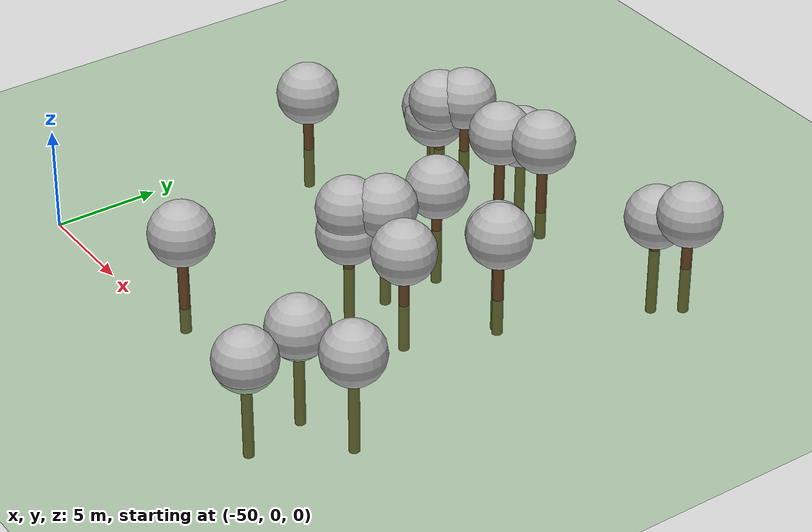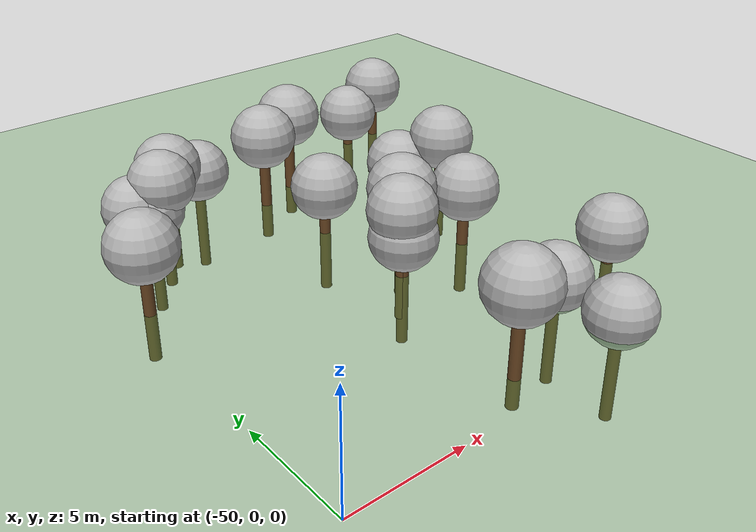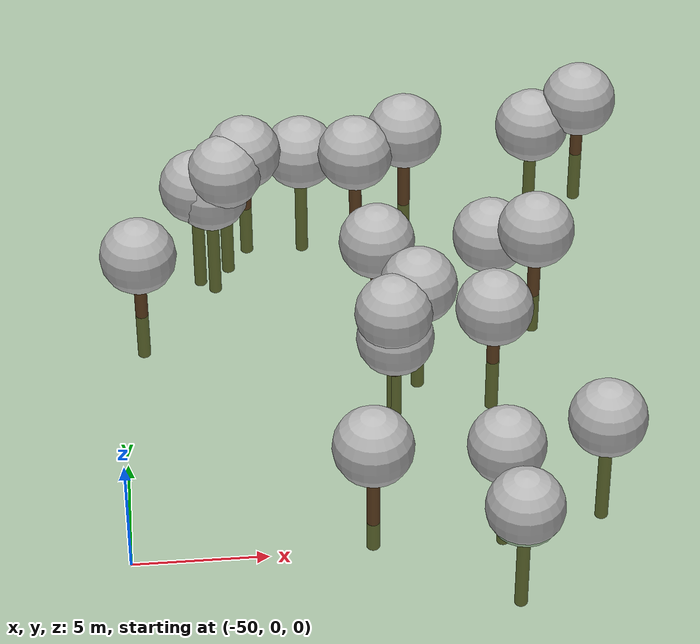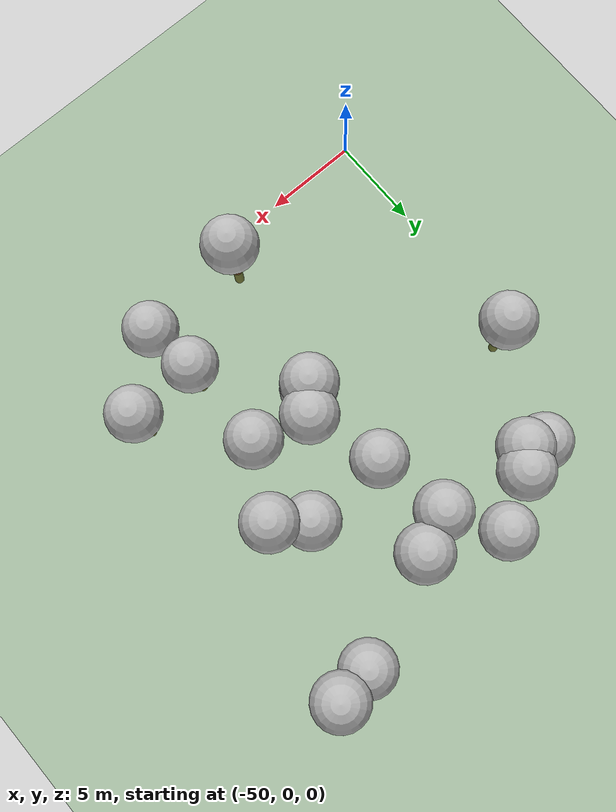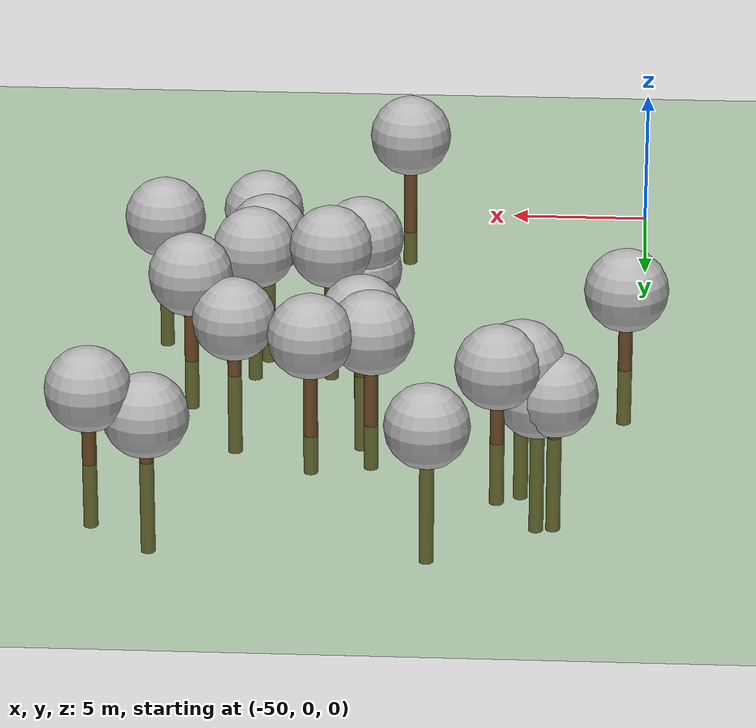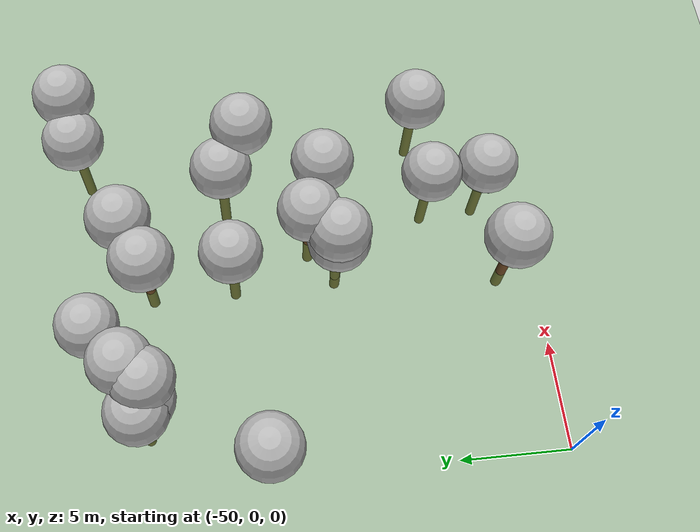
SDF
<sdf version="1.7">
 <world name="default">
  <model name="tree_simple476">
   <static>1</static>
   <link name="link">
    <pose>0 0 0.1 0 -0 0</pose>
    <collision name="collision_trunk">
     <pose>0 0 2 0 -0 0</pose>
     <geometry><cylinder><radius>0.25</radius><length>4</length></cylinder></geometry>
    </collision>
    <collision name="collision_treetop">
     <pose>0 0 5.2 0 -0 0</pose>
     <geometry><sphere><radius>1.5</radius></sphere></geometry>
    </collision>
    <visual name="trunk">
     <pose>0 0 2 0 -0 0</pose>
     <geometry><cylinder><radius>0.25</radius><length>4</length></cylinder></geometry>
     <material>
      <script>
       <uri>model://tree_simple/scripts</uri>
       <uri>model://tree_simple/materials/textures</uri>
       <name>TreeSimple/Trunk</name>
      </script>
     </material>
    </visual>
    <visual name="treetop">
     <pose>0 0 5.2 0 -0 0</pose>
     <geometry><sphere><radius>1.5</radius></sphere></geometry>
     <material>
      <script>
       <uri>model://tree_simple/scripts</uri>
       <uri>model://tree_simple/materials/textures</uri>
       <name>TreeSimple/Treetop</name>
      </script>
     </material>
    </visual>
   </link>
   <pose>-40.4906 18.2432 -1.81819 0 -0 0</pose>
  </model>
  <model name="tree_simple470">
   <static>1</static>
   <link name="link">
    <pose>0 0 0.1 0 -0 0</pose>
    <collision name="collision_trunk">
     <pose>0 0 2 0 -0 0</pose>
     <geometry><cylinder><radius>0.25</radius><length>4</length></cylinder></geometry>
    </collision>
    <collision name="collision_treetop">
     <pose>0 0 5.2 0 -0 0</pose>
     <geometry><sphere><radius>1.5</radius></sphere></geometry>
    </collision>
    <visual name="trunk">
     <pose>0 0 2 0 -0 0</pose>
     <geometry><cylinder><radius>0.25</radius><length>4</length></cylinder></geometry>
     <material>
      <script>
       <uri>model://tree_simple/scripts</uri>
       <uri>model://tree_simple/materials/textures</uri>
       <name>TreeSimple/Trunk</name>
      </script>
     </material>
    </visual>
    <visual name="treetop">
     <pose>0 0 5.2 0 -0 0</pose>
     <geometry><sphere><radius>1.5</radius></sphere></geometry>
     <material>
      <script>
       <uri>model://tree_simple/scripts</uri>
       <uri>model://tree_simple/materials/textures</uri>
       <name>TreeSimple/Treetop</name>
      </script>
     </material>
    </visual>
   </link>
   <pose>-42.5419 21.0598 -3.98765 0 -0 0</pose>
  </model>
  <model name="tree_simple467">
   <static>1</static>
   <link name="link">
    <pose>0 0 0.1 0 -0 0</pose>
    <collision name="collision_trunk">
     <pose>0 0 2 0 -0 0</pose>
     <geometry><cylinder><radius>0.25</radius><length>4</length></cylinder></geometry>
    </collision>
    <collision name="collision_treetop">
     <pose>0 0 5.2 0 -0 0</pose>
     <geometry><sphere><radius>1.5</radius></sphere></geometry>
    </collision>
    <visual name="trunk">
     <pose>0 0 2 0 -0 0</pose>
     <geometry><cylinder><radius>0.25</radius><length>4</length></cylinder></geometry>
     <material>
      <script>
       <uri>model://tree_simple/scripts</uri>
       <uri>model://tree_simple/materials/textures</uri>
       <name>TreeSimple/Trunk</name>
      </script>
     </material>
    </visual>
    <visual name="treetop">
     <pose>0 0 5.2 0 -0 0</pose>
     <geometry><sphere><radius>1.5</radius></sphere></geometry>
     <material>
      <script>
       <uri>model://tree_simple/scripts</uri>
       <uri>model://tree_simple/materials/textures</uri>
       <name>TreeSimple/Treetop</name>
      </script>
     </material>
    </visual>
   </link>
   <pose>-38.4436 19.1732 -1.57809 0 -0 0</pose>
  </model>
  <model name="tree_simple455">
   <static>1</static>
   <link name="link">
    <pose>0 0 0.1 0 -0 0</pose>
    <collision name="collision_trunk">
     <pose>0 0 2 0 -0 0</pose>
     <geometry><cylinder><radius>0.25</radius><length>4</length></cylinder></geometry>
    </collision>
    <collision name="collision_treetop">
     <pose>0 0 5.2 0 -0 0</pose>
     <geometry><sphere><radius>1.5</radius></sphere></geometry>
    </collision>
    <visual name="trunk">
     <pose>0 0 2 0 -0 0</pose>
     <geometry><cylinder><radius>0.25</radius><length>4</length></cylinder></geometry>
     <material>
      <script>
       <uri>model://tree_simple/scripts</uri>
       <uri>model://tree_simple/materials/textures</uri>
       <name>TreeSimple/Trunk</name>
      </script>
     </material>
    </visual>
    <visual name="treetop">
     <pose>0 0 5.2 0 -0 0</pose>
     <geometry><sphere><radius>1.5</radius></sphere></geometry>
     <material>
      <script>
       <uri>model://tree_simple/scripts</uri>
       <uri>model://tree_simple/materials/textures</uri>
       <name>TreeSimple/Treetop</name>
      </script>
     </material>
    </visual>
   </link>
   <pose>-32.1347 4.45624 -3.67909 0 -0 0</pose>
  </model>
  <model name="tree_simple440">
   <static>1</static>
   <link name="link">
    <pose>0 0 0.1 0 -0 0</pose>
    <collision name="collision_trunk">
     <pose>0 0 2 0 -0 0</pose>
     <geometry><cylinder><radius>0.25</radius><length>4</length></cylinder></geometry>
    </collision>
    <collision name="collision_treetop">
     <pose>0 0 5.2 0 -0 0</pose>
     <geometry><sphere><radius>1.5</radius></sphere></geometry>
    </collision>
    <visual name="trunk">
     <pose>0 0 2 0 -0 0</pose>
     <geometry><cylinder><radius>0.25</radius><length>4</length></cylinder></geometry>
     <material>
      <script>
       <uri>model://tree_simple/scripts</uri>
       <uri>model://tree_simple/materials/textures</uri>
       <name>TreeSimple/Trunk</name>
      </script>
     </material>
    </visual>
    <visual name="treetop">
     <pose>0 0 5.2 0 -0 0</pose>
     <geometry><sphere><radius>1.5</radius></sphere></geometry>
     <material>
      <script>
       <uri>model://tree_simple/scripts</uri>
       <uri>model://tree_simple/materials/textures</uri>
       <name>TreeSimple/Treetop</name>
      </script>
     </material>
    </visual>
   </link>
   <pose>-31.014 21.7755 -2.51993 0 -0 0</pose>
  </model>
  <model name="tree_simple437">
   <static>1</static>
   <link name="link">
    <pose>0 0 0.1 0 -0 0</pose>
    <collision name="collision_trunk">
     <pose>0 0 2 0 -0 0</pose>
     <geometry><cylinder><radius>0.25</radius><length>4</length></cylinder></geometry>
    </collision>
    <collision name="collision_treetop">
     <pose>0 0 5.2 0 -0 0</pose>
     <geometry><sphere><radius>1.5</radius></sphere></geometry>
    </collision>
    <visual name="trunk">
     <pose>0 0 2 0 -0 0</pose>
     <geometry><cylinder><radius>0.25</radius><length>4</length></cylinder></geometry>
     <material>
      <script>
       <uri>model://tree_simple/scripts</uri>
       <uri>model://tree_simple/materials/textures</uri>
       <name>TreeSimple/Trunk</name>
      </script>
     </material>
    </visual>
    <visual name="treetop">
     <pose>0 0 5.2 0 -0 0</pose>
     <geometry><sphere><radius>1.5</radius></sphere></geometry>
     <material>
      <script>
       <uri>model://tree_simple/scripts</uri>
       <uri>model://tree_simple/materials/textures</uri>
       <name>TreeSimple/Treetop</name>
      </script>
     </material>
    </visual>
   </link>
   <pose>-39.717 9.24665 -2.22874 0 -0 0</pose>
  </model>
  <model name="tree_simple420">
   <static>1</static>
   <link name="link">
    <pose>0 0 0.1 0 -0 0</pose>
    <collision name="collision_trunk">
     <pose>0 0 2 0 -0 0</pose>
     <geometry><cylinder><radius>0.25</radius><length>4</length></cylinder></geometry>
    </collision>
    <collision name="collision_treetop">
     <pose>0 0 5.2 0 -0 0</pose>
     <geometry><sphere><radius>1.5</radius></sphere></geometry>
    </collision>
    <visual name="trunk">
     <pose>0 0 2 0 -0 0</pose>
     <geometry><cylinder><radius>0.25</radius><length>4</length></cylinder></geometry>
     <material>
      <script>
       <uri>model://tree_simple/scripts</uri>
       <uri>model://tree_simple/materials/textures</uri>
       <name>TreeSimple/Trunk</name>
      </script>
     </material>
    </visual>
    <visual name="treetop">
     <pose>0 0 5.2 0 -0 0</pose>
     <geometry><sphere><radius>1.5</radius></sphere></geometry>
     <material>
      <script>
       <uri>model://tree_simple/scripts</uri>
       <uri>model://tree_simple/materials/textures</uri>
       <name>TreeSimple/Treetop</name>
      </script>
     </material>
    </visual>
   </link>
   <pose>-46.8739 18.914 -3.71404 0 -0 0</pose>
  </model>
  <model name="tree_simple383">
   <static>1</static>
   <link name="link">
    <pose>0 0 0.1 0 -0 0</pose>
    <collision name="collision_trunk">
     <pose>0 0 2 0 -0 0</pose>
     <geometry><cylinder><radius>0.25</radius><length>4</length></cylinder></geometry>
    </collision>
    <collision name="collision_treetop">
     <pose>0 0 5.2 0 -0 0</pose>
     <geometry><sphere><radius>1.5</radius></sphere></geometry>
    </collision>
    <visual name="trunk">
     <pose>0 0 2 0 -0 0</pose>
     <geometry><cylinder><radius>0.25</radius><length>4</length></cylinder></geometry>
     <material>
      <script>
       <uri>model://tree_simple/scripts</uri>
       <uri>model://tree_simple/materials/textures</uri>
       <name>TreeSimple/Trunk</name>
      </script>
     </material>
    </visual>
    <visual name="treetop">
     <pose>0 0 5.2 0 -0 0</pose>
     <geometry><sphere><radius>1.5</radius></sphere></geometry>
     <material>
      <script>
       <uri>model://tree_simple/scripts</uri>
       <uri>model://tree_simple/materials/textures</uri>
       <name>TreeSimple/Treetop</name>
      </script>
     </material>
    </visual>
   </link>
   <pose>-39.6589 9.20892 -3.47844 0 -0 0</pose>
  </model>
  <model name="tree_simple333">
   <static>1</static>
   <link name="link">
    <pose>0 0 0.1 0 -0 0</pose>
    <collision name="collision_trunk">
     <pose>0 0 2 0 -0 0</pose>
     <geometry><cylinder><radius>0.25</radius><length>4</length></cylinder></geometry>
    </collision>
    <collision name="collision_treetop">
     <pose>0 0 5.2 0 -0 0</pose>
     <geometry><sphere><radius>1.5</radius></sphere></geometry>
    </collision>
    <visual name="trunk">
     <pose>0 0 2 0 -0 0</pose>
     <geometry><cylinder><radius>0.25</radius><length>4</length></cylinder></geometry>
     <material>
      <script>
       <uri>model://tree_simple/scripts</uri>
       <uri>model://tree_simple/materials/textures</uri>
       <name>TreeSimple/Trunk</name>
      </script>
     </material>
    </visual>
    <visual name="treetop">
     <pose>0 0 5.2 0 -0 0</pose>
     <geometry><sphere><radius>1.5</radius></sphere></geometry>
     <material>
      <script>
       <uri>model://tree_simple/scripts</uri>
       <uri>model://tree_simple/materials/textures</uri>
       <name>TreeSimple/Treetop</name>
      </script>
     </material>
    </visual>
   </link>
   <pose>-39.9457 14.2709 -3.03774 0 -0 0</pose>
  </model>
  <model name="tree_simple289">
   <static>1</static>
   <link name="link">
    <pose>0 0 0.1 0 -0 0</pose>
    <collision name="collision_trunk">
     <pose>0 0 2 0 -0 0</pose>
     <geometry><cylinder><radius>0.25</radius><length>4</length></cylinder></geometry>
    </collision>
    <collision name="collision_treetop">
     <pose>0 0 5.2 0 -0 0</pose>
     <geometry><sphere><radius>1.5</radius></sphere></geometry>
    </collision>
    <visual name="trunk">
     <pose>0 0 2 0 -0 0</pose>
     <geometry><cylinder><radius>0.25</radius><length>4</length></cylinder></geometry>
     <material>
      <script>
       <uri>model://tree_simple/scripts</uri>
       <uri>model://tree_simple/materials/textures</uri>
       <name>TreeSimple/Trunk</name>
      </script>
     </material>
    </visual>
    <visual name="treetop">
     <pose>0 0 5.2 0 -0 0</pose>
     <geometry><sphere><radius>1.5</radius></sphere></geometry>
     <material>
      <script>
       <uri>model://tree_simple/scripts</uri>
       <uri>model://tree_simple/materials/textures</uri>
       <name>TreeSimple/Treetop</name>
      </script>
     </material>
    </visual>
   </link>
   <pose>-35.9303 4.10325 -4.43304 0 -0 0</pose>
  </model>
  <model name="tree_simple252">
   <static>1</static>
   <link name="link">
    <pose>0 0 0.1 0 -0 0</pose>
    <collision name="collision_trunk">
     <pose>0 0 2 0 -0 0</pose>
     <geometry><cylinder><radius>0.25</radius><length>4</length></cylinder></geometry>
    </collision>
    <collision name="collision_treetop">
     <pose>0 0 5.2 0 -0 0</pose>
     <geometry><sphere><radius>1.5</radius></sphere></geometry>
    </collision>
    <visual name="trunk">
     <pose>0 0 2 0 -0 0</pose>
     <geometry><cylinder><radius>0.25</radius><length>4</length></cylinder></geometry>
     <material>
      <script>
       <uri>model://tree_simple/scripts</uri>
       <uri>model://tree_simple/materials/textures</uri>
       <name>TreeSimple/Trunk</name>
      </script>
     </material>
    </visual>
    <visual name="treetop">
     <pose>0 0 5.2 0 -0 0</pose>
     <geometry><sphere><radius>1.5</radius></sphere></geometry>
     <material>
      <script>
       <uri>model://tree_simple/scripts</uri>
       <uri>model://tree_simple/materials/textures</uri>
       <name>TreeSimple/Treetop</name>
      </script>
     </material>
    </visual>
   </link>
   <pose>-49.2858 13.2769 -2.26581 0 -0 0</pose>
  </model>
  <model name="tree_simple231">
   <static>1</static>
   <link name="link">
    <pose>0 0 0.1 0 -0 0</pose>
    <collision name="collision_trunk">
     <pose>0 0 2 0 -0 0</pose>
     <geometry><cylinder><radius>0.25</radius><length>4</length></cylinder></geometry>
    </collision>
    <collision name="collision_treetop">
     <pose>0 0 5.2 0 -0 0</pose>
     <geometry><sphere><radius>1.5</radius></sphere></geometry>
    </collision>
    <visual name="trunk">
     <pose>0 0 2 0 -0 0</pose>
     <geometry><cylinder><radius>0.25</radius><length>4</length></cylinder></geometry>
     <material>
      <script>
       <uri>model://tree_simple/scripts</uri>
       <uri>model://tree_simple/materials/textures</uri>
       <name>TreeSimple/Trunk</name>
      </script>
     </material>
    </visual>
    <visual name="treetop">
     <pose>0 0 5.2 0 -0 0</pose>
     <geometry><sphere><radius>1.5</radius></sphere></geometry>
     <material>
      <script>
       <uri>model://tree_simple/scripts</uri>
       <uri>model://tree_simple/materials/textures</uri>
       <name>TreeSimple/Treetop</name>
      </script>
     </material>
    </visual>
   </link>
   <pose>-35.8339 9.59487 -2.56261 0 -0 0</pose>
  </model>
  <model name="tree_simple218">
   <static>1</static>
   <link name="link">
    <pose>0 0 0.1 0 -0 0</pose>
    <collision name="collision_trunk">
     <pose>0 0 2 0 -0 0</pose>
     <geometry><cylinder><radius>0.25</radius><length>4</length></cylinder></geometry>
    </collision>
    <collision name="collision_treetop">
     <pose>0 0 5.2 0 -0 0</pose>
     <geometry><sphere><radius>1.5</radius></sphere></geometry>
    </collision>
    <visual name="trunk">
     <pose>0 0 2 0 -0 0</pose>
     <geometry><cylinder><radius>0.25</radius><length>4</length></cylinder></geometry>
     <material>
      <script>
       <uri>model://tree_simple/scripts</uri>
       <uri>model://tree_simple/materials/textures</uri>
       <name>TreeSimple/Trunk</name>
      </script>
     </material>
    </visual>
    <visual name="treetop">
     <pose>0 0 5.2 0 -0 0</pose>
     <geometry><sphere><radius>1.5</radius></sphere></geometry>
     <material>
      <script>
       <uri>model://tree_simple/scripts</uri>
       <uri>model://tree_simple/materials/textures</uri>
       <name>TreeSimple/Treetop</name>
      </script>
     </material>
    </visual>
   </link>
   <pose>-35.4442 14.4296 -3.18279 0 -0 0</pose>
  </model>
  <model name="tree_simple209">
   <static>1</static>
   <link name="link">
    <pose>0 0 0.1 0 -0 0</pose>
    <collision name="collision_trunk">
     <pose>0 0 2 0 -0 0</pose>
     <geometry><cylinder><radius>0.25</radius><length>4</length></cylinder></geometry>
    </collision>
    <collision name="collision_treetop">
     <pose>0 0 5.2 0 -0 0</pose>
     <geometry><sphere><radius>1.5</radius></sphere></geometry>
    </collision>
    <visual name="trunk">
     <pose>0 0 2 0 -0 0</pose>
     <geometry><cylinder><radius>0.25</radius><length>4</length></cylinder></geometry>
     <material>
      <script>
       <uri>model://tree_simple/scripts</uri>
       <uri>model://tree_simple/materials/textures</uri>
       <name>TreeSimple/Trunk</name>
      </script>
     </material>
    </visual>
    <visual name="treetop">
     <pose>0 0 5.2 0 -0 0</pose>
     <geometry><sphere><radius>1.5</radius></sphere></geometry>
     <material>
      <script>
       <uri>model://tree_simple/scripts</uri>
       <uri>model://tree_simple/materials/textures</uri>
       <name>TreeSimple/Treetop</name>
      </script>
     </material>
    </visual>
   </link>
   <pose>-33.8233 13.2828 -2.0071 0 -0 0</pose>
  </model>
  <model name="tree_simple199">
   <static>1</static>
   <link name="link">
    <pose>0 0 0.1 0 -0 0</pose>
    <collision name="collision_trunk">
     <pose>0 0 2 0 -0 0</pose>
     <geometry><cylinder><radius>0.25</radius><length>4</length></cylinder></geometry>
    </collision>
    <collision name="collision_treetop">
     <pose>0 0 5.2 0 -0 0</pose>
     <geometry><sphere><radius>1.5</radius></sphere></geometry>
    </collision>
    <visual name="trunk">
     <pose>0 0 2 0 -0 0</pose>
     <geometry><cylinder><radius>0.25</radius><length>4</length></cylinder></geometry>
     <material>
      <script>
       <uri>model://tree_simple/scripts</uri>
       <uri>model://tree_simple/materials/textures</uri>
       <name>TreeSimple/Trunk</name>
      </script>
     </material>
    </visual>
    <visual name="treetop">
     <pose>0 0 5.2 0 -0 0</pose>
     <geometry><sphere><radius>1.5</radius></sphere></geometry>
     <material>
      <script>
       <uri>model://tree_simple/scripts</uri>
       <uri>model://tree_simple/materials/textures</uri>
       <name>TreeSimple/Treetop</name>
      </script>
     </material>
    </visual>
   </link>
   <pose>-38.6602 10.5136 -2.0488 0 -0 0</pose>
  </model>
  <model name="tree_simple127">
   <static>1</static>
   <link name="link">
    <pose>0 0 0.1 0 -0 0</pose>
    <collision name="collision_trunk">
     <pose>0 0 2 0 -0 0</pose>
     <geometry><cylinder><radius>0.25</radius><length>4</length></cylinder></geometry>
    </collision>
    <collision name="collision_treetop">
     <pose>0 0 5.2 0 -0 0</pose>
     <geometry><sphere><radius>1.5</radius></sphere></geometry>
    </collision>
    <visual name="trunk">
     <pose>0 0 2 0 -0 0</pose>
     <geometry><cylinder><radius>0.25</radius><length>4</length></cylinder></geometry>
     <material>
      <script>
       <uri>model://tree_simple/scripts</uri>
       <uri>model://tree_simple/materials/textures</uri>
       <name>TreeSimple/Trunk</name>
      </script>
     </material>
    </visual>
    <visual name="treetop">
     <pose>0 0 5.2 0 -0 0</pose>
     <geometry><sphere><radius>1.5</radius></sphere></geometry>
     <material>
      <script>
       <uri>model://tree_simple/scripts</uri>
       <uri>model://tree_simple/materials/textures</uri>
       <name>TreeSimple/Treetop</name>
      </script>
     </material>
    </visual>
   </link>
   <pose>-45.7203 18.512 -2.68972 0 -0 0</pose>
  </model>
  <model name="tree_simple122">
   <static>1</static>
   <link name="link">
    <pose>0 0 0.1 0 -0 0</pose>
    <collision name="collision_trunk">
     <pose>0 0 2 0 -0 0</pose>
     <geometry><cylinder><radius>0.25</radius><length>4</length></cylinder></geometry>
    </collision>
    <collision name="collision_treetop">
     <pose>0 0 5.2 0 -0 0</pose>
     <geometry><sphere><radius>1.5</radius></sphere></geometry>
    </collision>
    <visual name="trunk">
     <pose>0 0 2 0 -0 0</pose>
     <geometry><cylinder><radius>0.25</radius><length>4</length></cylinder></geometry>
     <material>
      <script>
       <uri>model://tree_simple/scripts</uri>
       <uri>model://tree_simple/materials/textures</uri>
       <name>TreeSimple/Trunk</name>
      </script>
     </material>
    </visual>
    <visual name="treetop">
     <pose>0 0 5.2 0 -0 0</pose>
     <geometry><sphere><radius>1.5</radius></sphere></geometry>
     <material>
      <script>
       <uri>model://tree_simple/scripts</uri>
       <uri>model://tree_simple/materials/textures</uri>
       <name>TreeSimple/Treetop</name>
      </script>
     </material>
    </visual>
   </link>
   <pose>-44.907 19.4158 -2.47784 0 -0 0</pose>
  </model>
  <model name="tree_simple117">
   <static>1</static>
   <link name="link">
    <pose>0 0 0.1 0 -0 0</pose>
    <collision name="collision_trunk">
     <pose>0 0 2 0 -0 0</pose>
     <geometry><cylinder><radius>0.25</radius><length>4</length></cylinder></geometry>
    </collision>
    <collision name="collision_treetop">
     <pose>0 0 5.2 0 -0 0</pose>
     <geometry><sphere><radius>1.5</radius></sphere></geometry>
    </collision>
    <visual name="trunk">
     <pose>0 0 2 0 -0 0</pose>
     <geometry><cylinder><radius>0.25</radius><length>4</length></cylinder></geometry>
     <material>
      <script>
       <uri>model://tree_simple/scripts</uri>
       <uri>model://tree_simple/materials/textures</uri>
       <name>TreeSimple/Trunk</name>
      </script>
     </material>
    </visual>
    <visual name="treetop">
     <pose>0 0 5.2 0 -0 0</pose>
     <geometry><sphere><radius>1.5</radius></sphere></geometry>
     <material>
      <script>
       <uri>model://tree_simple/scripts</uri>
       <uri>model://tree_simple/materials/textures</uri>
       <name>TreeSimple/Treetop</name>
      </script>
     </material>
    </visual>
   </link>
   <pose>-46.2827 18.6501 -3.90797 0 -0 0</pose>
  </model>
  <model name="tree_simple105">
   <static>1</static>
   <link name="link">
    <pose>0 0 0.1 0 -0 0</pose>
    <collision name="collision_trunk">
     <pose>0 0 2 0 -0 0</pose>
     <geometry><cylinder><radius>0.25</radius><length>4</length></cylinder></geometry>
    </collision>
    <collision name="collision_treetop">
     <pose>0 0 5.2 0 -0 0</pose>
     <geometry><sphere><radius>1.5</radius></sphere></geometry>
    </collision>
    <visual name="trunk">
     <pose>0 0 2 0 -0 0</pose>
     <geometry><cylinder><radius>0.25</radius><length>4</length></cylinder></geometry>
     <material>
      <script>
       <uri>model://tree_simple/scripts</uri>
       <uri>model://tree_simple/materials/textures</uri>
       <name>TreeSimple/Trunk</name>
      </script>
     </material>
    </visual>
    <visual name="treetop">
     <pose>0 0 5.2 0 -0 0</pose>
     <geometry><sphere><radius>1.5</radius></sphere></geometry>
     <material>
      <script>
       <uri>model://tree_simple/scripts</uri>
       <uri>model://tree_simple/materials/textures</uri>
       <name>TreeSimple/Treetop</name>
      </script>
     </material>
    </visual>
   </link>
   <pose>-41.1352 1.47782 -1.44405 0 -0 0</pose>
  </model>
  <model name="tree_simple43">
   <static>1</static>
   <link name="link">
    <pose>0 0 0.1 0 -0 0</pose>
    <collision name="collision_trunk">
     <pose>0 0 2 0 -0 0</pose>
     <geometry><cylinder><radius>0.25</radius><length>4</length></cylinder></geometry>
    </collision>
    <collision name="collision_treetop">
     <pose>0 0 5.2 0 -0 0</pose>
     <geometry><sphere><radius>1.5</radius></sphere></geometry>
    </collision>
    <visual name="trunk">
     <pose>0 0 2 0 -0 0</pose>
     <geometry><cylinder><radius>0.25</radius><length>4</length></cylinder></geometry>
     <material>
      <script>
       <uri>model://tree_simple/scripts</uri>
       <uri>model://tree_simple/materials/textures</uri>
       <name>TreeSimple/Trunk</name>
      </script>
     </material>
    </visual>
    <visual name="treetop">
     <pose>0 0 5.2 0 -0 0</pose>
     <geometry><sphere><radius>1.5</radius></sphere></geometry>
     <material>
      <script>
       <uri>model://tree_simple/scripts</uri>
       <uri>model://tree_simple/materials/textures</uri>
       <name>TreeSimple/Treetop</name>
      </script>
     </material>
    </visual>
   </link>
   <pose>-32.949 21.5372 -3.58246 0 -0 0</pose>
  </model>
  <model name="tree_simple30">
   <static>1</static>
   <link name="link">
    <pose>0 0 0.1 0 -0 0</pose>
    <collision name="collision_trunk">
     <pose>0 0 2 0 -0 0</pose>
     <geometry><cylinder><radius>0.25</radius><length>4</length></cylinder></geometry>
    </collision>
    <collision name="collision_treetop">
     <pose>0 0 5.2 0 -0 0</pose>
     <geometry><sphere><radius>1.5</radius></sphere></geometry>
    </collision>
    <visual name="trunk">
     <pose>0 0 2 0 -0 0</pose>
     <geometry><cylinder><radius>0.25</radius><length>4</length></cylinder></geometry>
     <material>
      <script>
       <uri>model://tree_simple/scripts</uri>
       <uri>model://tree_simple/materials/textures</uri>
       <name>TreeSimple/Trunk</name>
      </script>
     </material>
    </visual>
    <visual name="treetop">
     <pose>0 0 5.2 0 -0 0</pose>
     <geometry><sphere><radius>1.5</radius></sphere></geometry>
     <material>
      <script>
       <uri>model://tree_simple/scripts</uri>
       <uri>model://tree_simple/materials/textures</uri>
       <name>TreeSimple/Treetop</name>
      </script>
     </material>
    </visual>
   </link>
   <pose>-35.5727 1.19199 -4.73207 0 -0 0</pose>
  </model>
  <model name="ground_plane">
   <static>1</static>
   <link name="link">
    <collision name="collision">
     <geometry><plane><normal>0 0 1</normal><size>250 250</size></plane></geometry>
     <surface><friction><ode><mu>1</mu><mu2>1</mu2></ode></friction></surface>
    </collision>
    <visual name="grass">
     <cast_shadows>0</cast_shadows>
     <geometry><plane><normal>0 0 1</normal><size>150 250</size></plane></geometry>
     <material>
      <script><uri>file://media/materials/scripts/Gazebo.material</uri><name>Gazebo/Grass</name></script>
     </material>
    </visual>
   </link>
  </model>
 </world>
</sdf>
